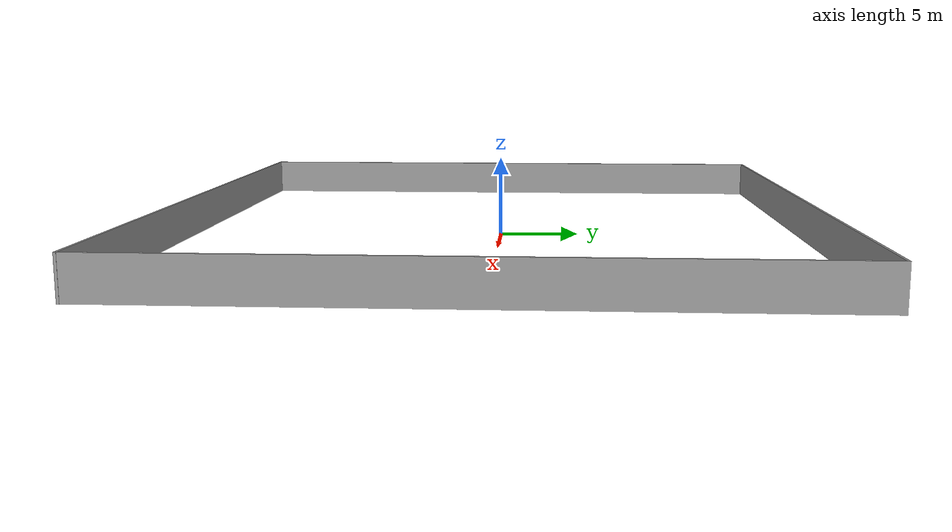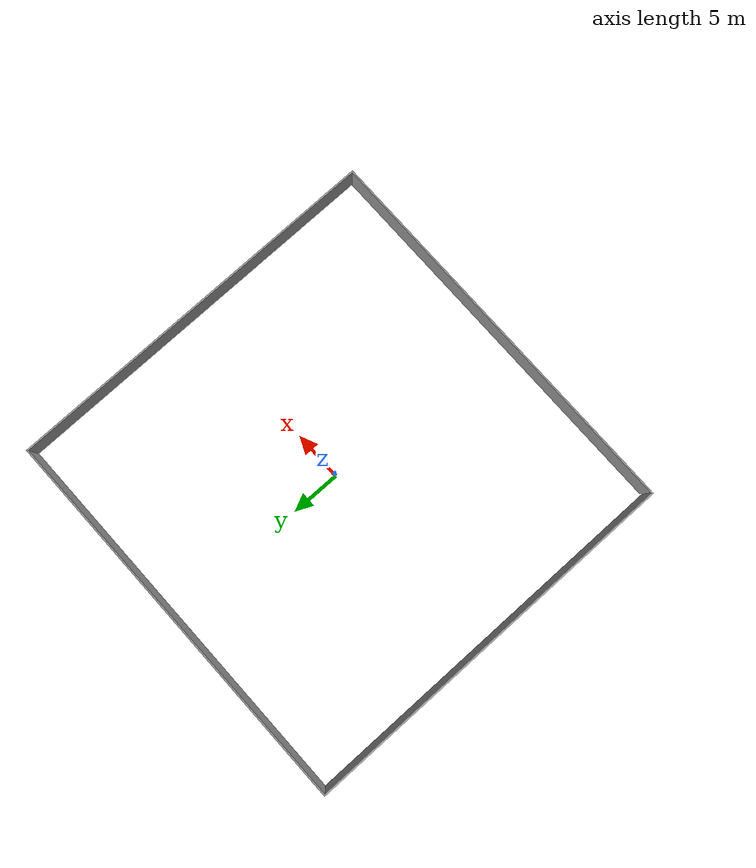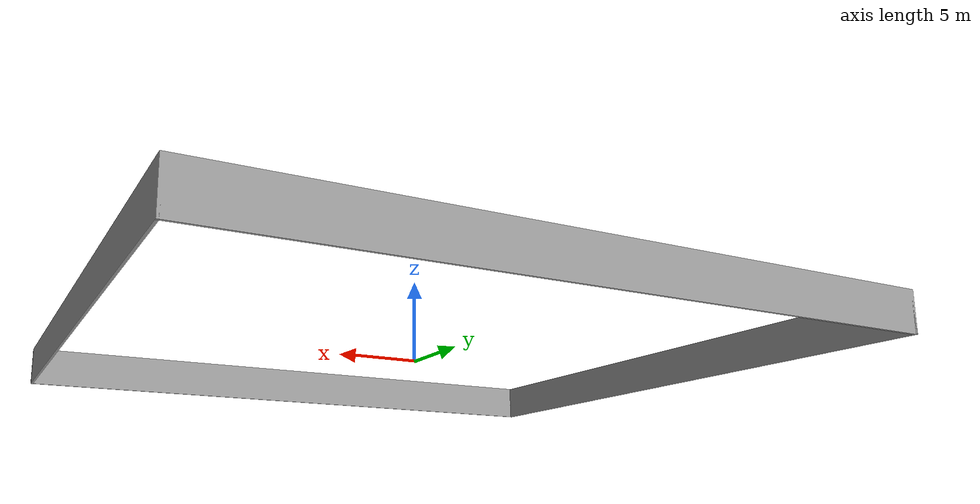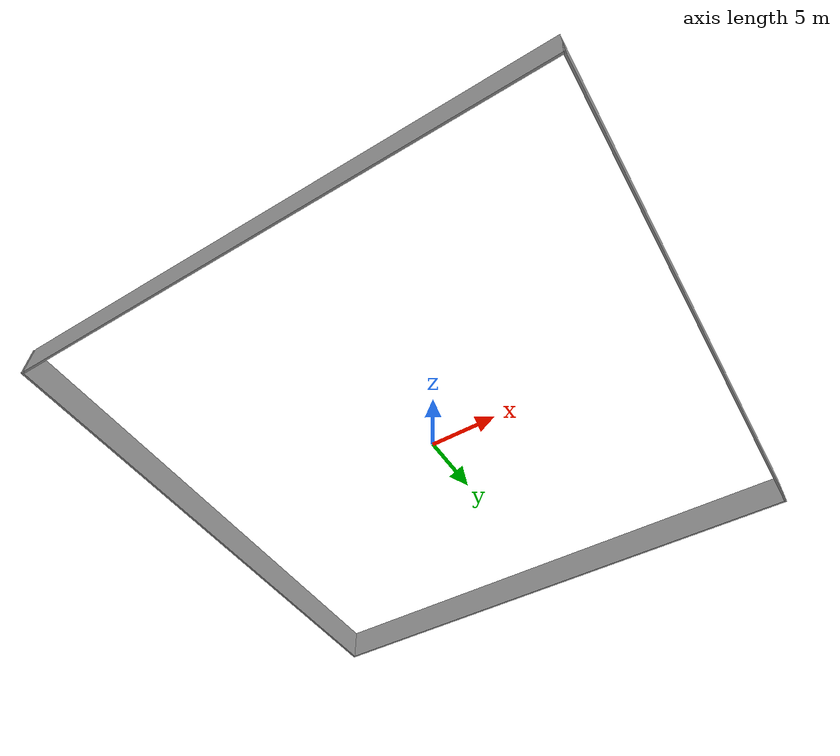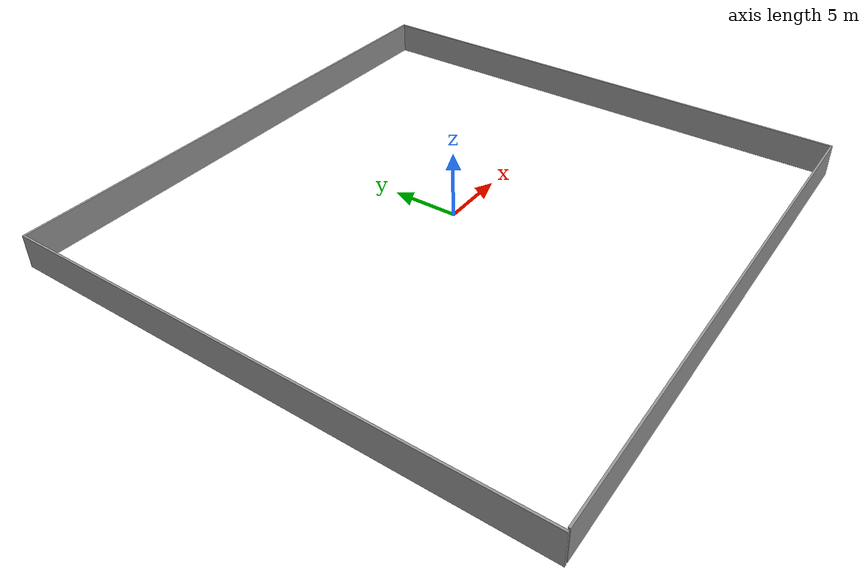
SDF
<?xml version='1.0'?>
<sdf version='1.6'>
  <model name='big_square'>
    <pose frame=''>-0.128112 -0.353003 0 0 -0 0</pose>
    <link name='Wall_11'>
      <collision name='Wall_11_Collision'>
        <geometry>
          <box>
            <size>39.5 0.15 2.5</size>
          </box>
        </geometry>
        <pose frame=''>0 0 1.25 0 -0 0</pose>
      </collision>
      <visual name='Wall_11_Visual'>
        <pose frame=''>0 0 1.25 0 -0 0</pose>
        <geometry>
          <box>
            <size>39.5 0.15 2.5</size>
          </box>
        </geometry>
        <material>
          <script>
            <uri>file://media/materials/scripts/gazebo.material</uri>
            <name>Gazebo/Grey</name>
          </script>
          <ambient>1 1 1 1</ambient>
        </material>
        <meta>
          <layer>0</layer>
        </meta>
      </visual>
      <pose frame=''>-20.1792 -0 0 0 -0 1.5708</pose>
    </link>
    <link name='Wall_12'>
      <collision name='Wall_12_Collision'>
        <geometry>
          <box>
            <size>40.5 0.15 2.5</size>
          </box>
        </geometry>
        <pose frame=''>0 0 1.25 0 -0 0</pose>
      </collision>
      <visual name='Wall_12_Visual'>
        <pose frame=''>0 0 1.25 0 -0 0</pose>
        <geometry>
          <box>
            <size>40.5 0.15 2.5</size>
          </box>
        </geometry>
        <material>
          <script>
            <uri>file://media/materials/scripts/gazebo.material</uri>
            <name>Gazebo/Grey</name>
          </script>
          <ambient>1 1 1 1</ambient>
        </material>
        <meta>
          <layer>0</layer>
        </meta>
      </visual>
      <pose frame=''>-0.00417 19.675 0 0 -0 0</pose>
    </link>
    <link name='Wall_13'>
      <collision name='Wall_13_Collision'>
        <geometry>
          <box>
            <size>39.5 0.15 2.5</size>
          </box>
        </geometry>
        <pose frame=''>0 0 1.25 0 -0 0</pose>
      </collision>
      <visual name='Wall_13_Visual'>
        <pose frame=''>0 0 1.25 0 -0 0</pose>
        <geometry>
          <box>
            <size>39.5 0.15 2.5</size>
          </box>
        </geometry>
        <material>
          <script>
            <uri>file://media/materials/scripts/gazebo.material</uri>
            <name>Gazebo/Grey</name>
          </script>
          <ambient>1 1 1 1</ambient>
        </material>
        <meta>
          <layer>0</layer>
        </meta>
      </visual>
      <pose frame=''>20.1708 -0 0 0 -0 -1.5708</pose>
    </link>
    <link name='Wall_9'>
      <collision name='Wall_9_Collision'>
        <geometry>
          <box>
            <size>40.25 0.15 2.5</size>
          </box>
        </geometry>
        <pose frame=''>0 0 1.25 0 -0 0</pose>
      </collision>
      <visual name='Wall_9_Visual'>
        <pose frame=''>0 0 1.25 0 -0 0</pose>
        <geometry>
          <box>
            <size>40.25 0.15 2.5</size>
          </box>
        </geometry>
        <material>
          <script>
            <uri>file://media/materials/scripts/gazebo.material</uri>
            <name>Gazebo/Grey</name>
          </script>
          <ambient>1 1 1 1</ambient>
        </material>
        <meta>
          <layer>0</layer>
        </meta>
      </visual>
      <pose frame=''>0.129172 -19.675 0 0 -0 0</pose>
    </link>
    <static>1</static>
  </model>
</sdf>
